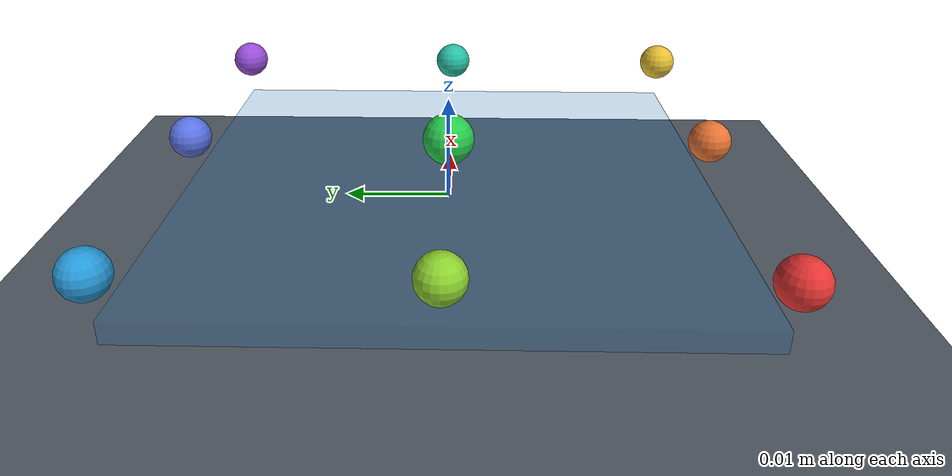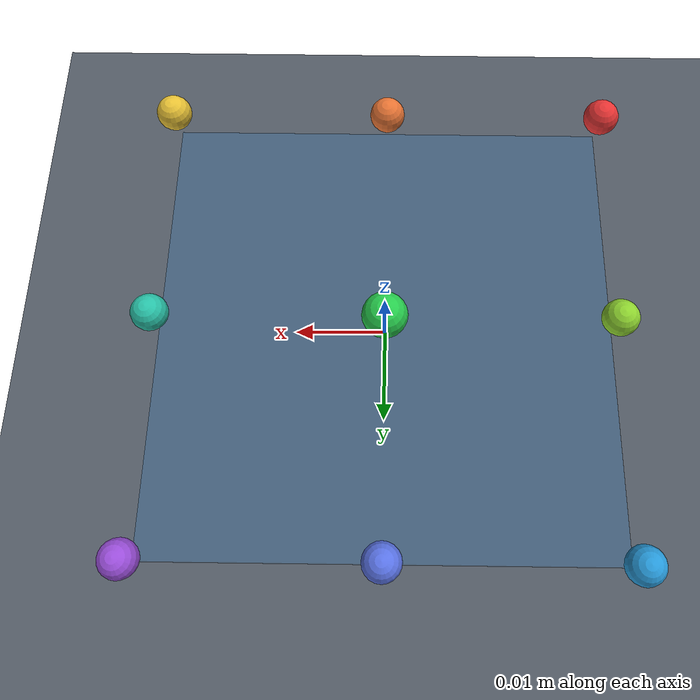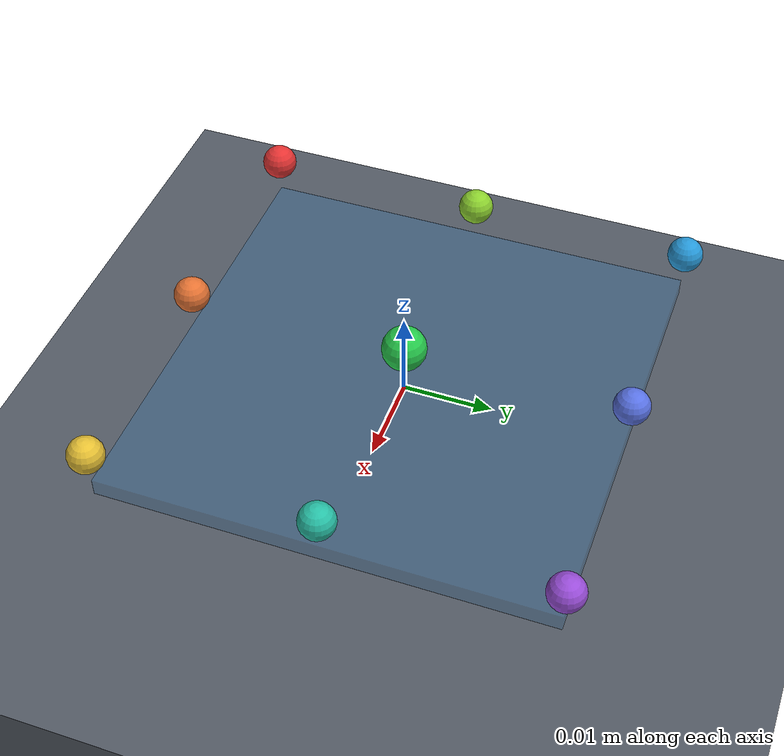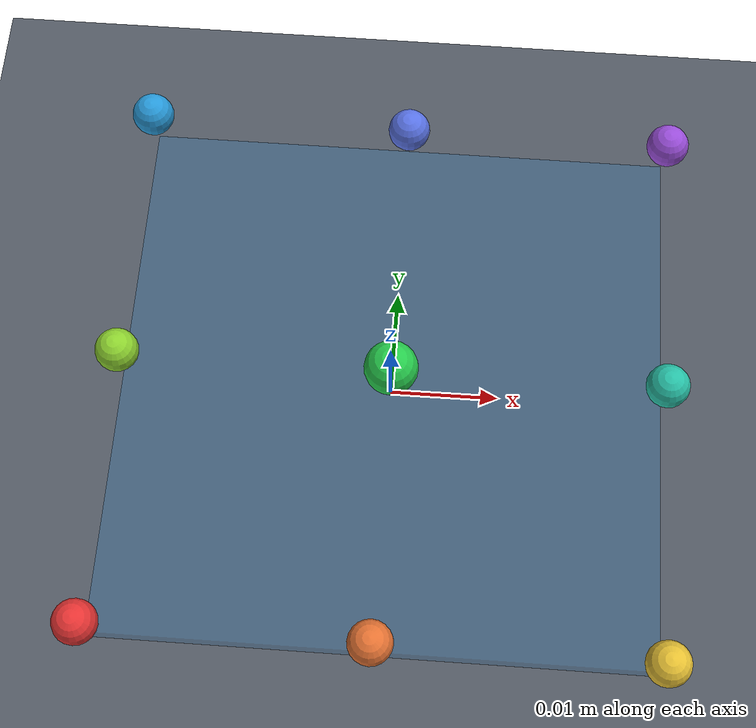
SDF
<?xml version="1.0" ?>
<!--
  T2 — response uniformity on a 0.05 x 0.05 m active area sampled on a 3 x 3 grid.
  Grid markers are visual-only diagnostics; the tactile runner applies loads by code.
-->
<sdf version="1.6">
  <world name="tactile_t2_uniformity">
    <scene>
      <ambient>0.78 0.78 0.78 1</ambient>
      <background>0.95 0.95 0.98 1</background>
    </scene>

    <include>
      <uri>model://sun</uri>
    </include>

    <model name="t2_mount_base">
      <static>true</static>
      <pose>0 0 -0.03 0 0 0</pose>
      <link name="link">
        <collision name="collision">
          <geometry>
            <box>
              <size>0.20 0.20 0.04</size>
            </box>
          </geometry>
        </collision>
        <visual name="visual">
          <geometry>
            <box>
              <size>0.20 0.20 0.04</size>
            </box>
          </geometry>
          <material>
            <ambient>0.32 0.35 0.39 1</ambient>
            <diffuse>0.32 0.35 0.39 1</diffuse>
          </material>
        </visual>
      </link>
    </model>

    <model name="t2_active_zone">
      <static>true</static>
      <pose>0 0 0.001 0 0 0</pose>
      <link name="link">
        <visual name="visual">
          <geometry>
            <box>
              <size>0.05 0.05 0.002</size>
            </box>
          </geometry>
          <material>
            <ambient>0.10 0.45 0.75 0.25</ambient>
            <diffuse>0.10 0.45 0.75 0.25</diffuse>
          </material>
        </visual>
      </link>
    </model>

    <model name="t2_grid_markers">
      <static>true</static>
      <pose>0 0 0.006 0 0 0</pose>
      <link name="link">
        <visual name="marker_11">
          <pose>-0.025 -0.025 0 0 0 0</pose>
          <geometry>
            <sphere><radius>0.002</radius></sphere>
          </geometry>
          <material><ambient>0.90 0.20 0.20 1</ambient><diffuse>0.90 0.20 0.20 1</diffuse></material>
        </visual>
        <visual name="marker_12">
          <pose>0 -0.025 0 0 0 0</pose>
          <geometry>
            <sphere><radius>0.002</radius></sphere>
          </geometry>
          <material><ambient>0.90 0.45 0.20 1</ambient><diffuse>0.90 0.45 0.20 1</diffuse></material>
        </visual>
        <visual name="marker_13">
          <pose>0.025 -0.025 0 0 0 0</pose>
          <geometry>
            <sphere><radius>0.002</radius></sphere>
          </geometry>
          <material><ambient>0.90 0.75 0.20 1</ambient><diffuse>0.90 0.75 0.20 1</diffuse></material>
        </visual>
        <visual name="marker_21">
          <pose>-0.025 0 0 0 0 0</pose>
          <geometry>
            <sphere><radius>0.002</radius></sphere>
          </geometry>
          <material><ambient>0.55 0.82 0.18 1</ambient><diffuse>0.55 0.82 0.18 1</diffuse></material>
        </visual>
        <visual name="marker_22">
          <pose>0 0 0 0 0 0</pose>
          <geometry>
            <sphere><radius>0.0025</radius></sphere>
          </geometry>
          <material><ambient>0.15 0.80 0.30 1</ambient><diffuse>0.15 0.80 0.30 1</diffuse></material>
        </visual>
        <visual name="marker_23">
          <pose>0.025 0 0 0 0 0</pose>
          <geometry>
            <sphere><radius>0.002</radius></sphere>
          </geometry>
          <material><ambient>0.15 0.75 0.65 1</ambient><diffuse>0.15 0.75 0.65 1</diffuse></material>
        </visual>
        <visual name="marker_31">
          <pose>-0.025 0.025 0 0 0 0</pose>
          <geometry>
            <sphere><radius>0.002</radius></sphere>
          </geometry>
          <material><ambient>0.15 0.60 0.85 1</ambient><diffuse>0.15 0.60 0.85 1</diffuse></material>
        </visual>
        <visual name="marker_32">
          <pose>0 0.025 0 0 0 0</pose>
          <geometry>
            <sphere><radius>0.002</radius></sphere>
          </geometry>
          <material><ambient>0.35 0.45 0.90 1</ambient><diffuse>0.35 0.45 0.90 1</diffuse></material>
        </visual>
        <visual name="marker_33">
          <pose>0.025 0.025 0 0 0 0</pose>
          <geometry>
            <sphere><radius>0.002</radius></sphere>
          </geometry>
          <material><ambient>0.60 0.30 0.85 1</ambient><diffuse>0.60 0.30 0.85 1</diffuse></material>
        </visual>
      </link>
    </model>
  </world>
</sdf>
